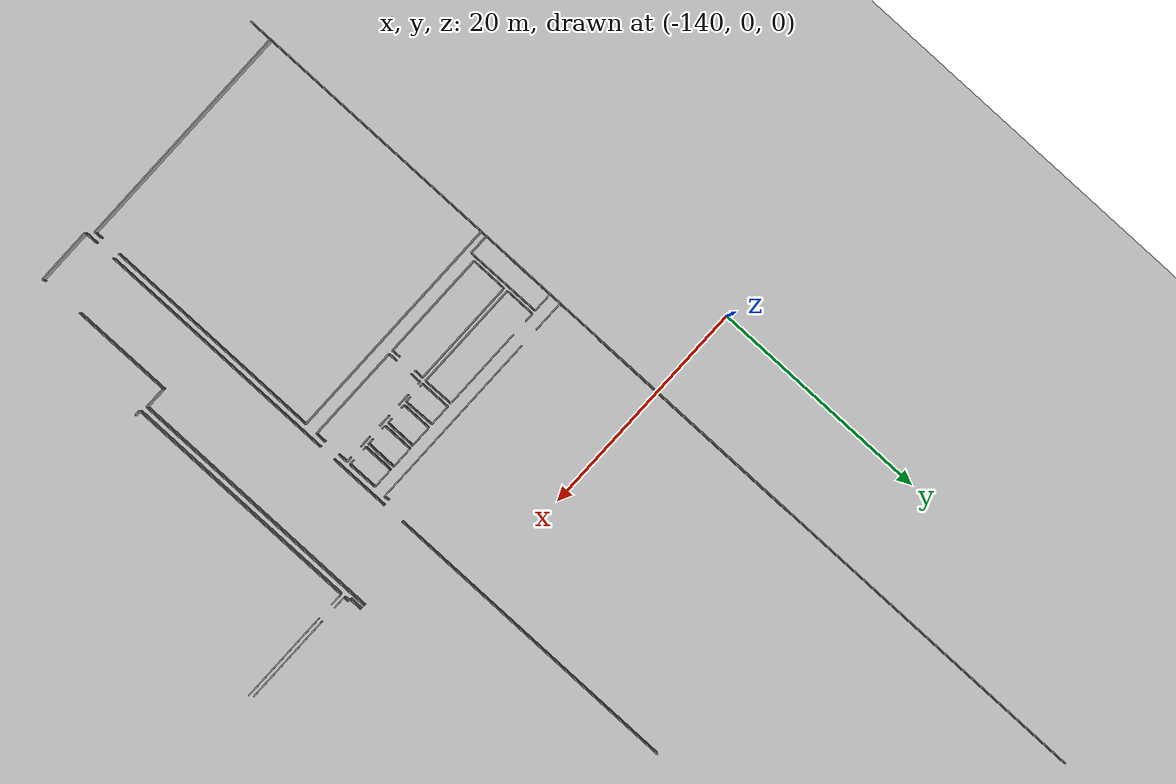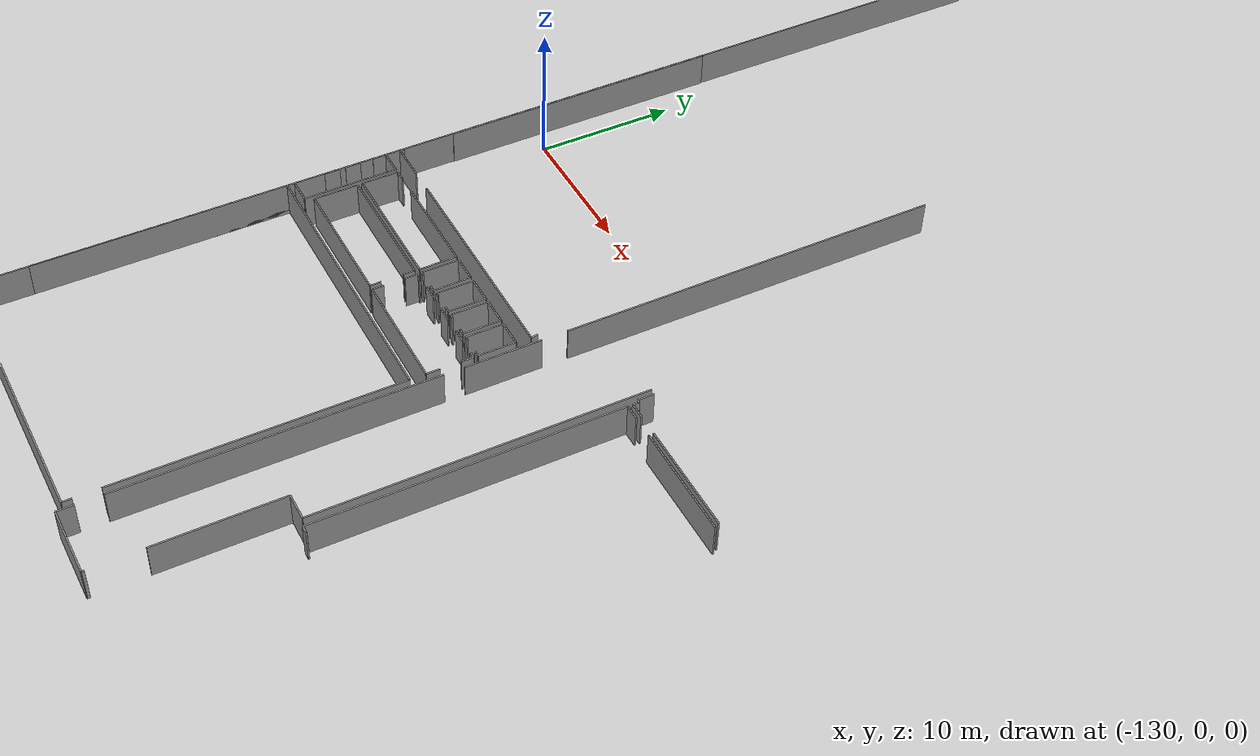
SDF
<sdf version="1.6">
 <world name="default">
  <model name="ground_plane">
   <static>1</static>
   <link name="link">
    <collision name="collision">
     <geometry><plane><normal>0 0 1</normal><size>100 100</size></plane></geometry>
     <surface><friction><ode><mu>100</mu><mu2>50</mu2></ode></friction></surface>
    </collision>
    <visual name="visual">
     <cast_shadows>0</cast_shadows>
     <geometry><plane><normal>0 0 1</normal><size>100 100</size></plane></geometry>
     <material>
      <script><uri>file://media/materials/scripts/gazebo.material</uri><name>Gazebo/Grey</name></script>
     </material>
    </visual>
   </link>
  </model>
  <model name="50015848">
   <static>1</static>
   <link name="Wall_18">
    <collision name="Wall_18_Collision">
     <geometry><box><size>0.189281251388 0.1 2.5</size></box></geometry>
     <pose>0.0946406256938 0 1.25 0 0 0</pose>
    </collision>
    <visual name="Wall_18_Visual">
     <pose>0.0946406256938 0 1.25 0 0 0</pose>
     <geometry><box><size>0.189281251388 0.1 2.5</size></box></geometry>
     <material>
      <script><uri>file://media/materials/scripts/gazebo.material</uri><name>Gazebo/Grey</name></script>
      <ambient>1 1 1 1</ambient>
     </material>
    </visual>
    <pose>26.2809151977 -85.763436495 0 0 0 -1.57079632679</pose>
   </link>
   <link name="Wall_19">
    <collision name="Wall_19_Collision">
     <geometry><box><size>5.0124009667 0.1 2.5</size></box></geometry>
     <pose>2.50620048335 0 1.25 0 0 0</pose>
    </collision>
    <visual name="Wall_19_Visual">
     <pose>2.50620048335 0 1.25 0 0 0</pose>
     <geometry><box><size>5.0124009667 0.1 2.5</size></box></geometry>
     <material>
      <script><uri>file://media/materials/scripts/gazebo.material</uri><name>Gazebo/Grey</name></script>
      <ambient>1 1 1 1</ambient>
     </material>
    </visual>
    <pose>26.2809151977 -85.9527177464 0 0 0 3.14159265359</pose>
   </link>
   <link name="Wall_20">
    <collision name="Wall_20_Collision">
     <geometry><box><size>1.18567196747 0.1 2.5</size></box></geometry>
     <pose>0.592835983736 0 1.25 0 0 0</pose>
    </collision>
    <visual name="Wall_20_Visual">
     <pose>0.592835983736 0 1.25 0 0 0</pose>
     <geometry><box><size>1.18567196747 0.1 2.5</size></box></geometry>
     <material>
      <script><uri>file://media/materials/scripts/gazebo.material</uri><name>Gazebo/Grey</name></script>
      <ambient>1 1 1 1</ambient>
     </material>
    </visual>
    <pose>21.268514231 -85.9527177464 0 0 0 1.57079632679</pose>
   </link>
   <link name="Wall_21">
    <collision name="Wall_21_Collision">
     <geometry><box><size>22.2679496857 0.1 2.5</size></box></geometry>
     <pose>11.1339748428 0 1.25 0 0 0</pose>
    </collision>
    <visual name="Wall_21_Visual">
     <pose>11.1339748428 0 1.25 0 0 0</pose>
     <geometry><box><size>22.2679496857 0.1 2.5</size></box></geometry>
     <material>
      <script><uri>file://media/materials/scripts/gazebo.material</uri><name>Gazebo/Grey</name></script>
      <ambient>1 1 1 1</ambient>
     </material>
    </visual>
    <pose>21.268514231 -82.9343668529 0 0 0 1.57079632679</pose>
   </link>
   <link name="Wall_22">
    <collision name="Wall_22_Collision">
     <geometry><box><size>5.48788764914 0.1 2.5</size></box></geometry>
     <pose>2.74394382457 0 1.25 0 0 0</pose>
    </collision>
    <visual name="Wall_22_Visual">
     <pose>2.74394382457 0 1.25 0 0 0</pose>
     <geometry><box><size>5.48788764914 0.1 2.5</size></box></geometry>
     <material>
      <script><uri>file://media/materials/scripts/gazebo.material</uri><name>Gazebo/Grey</name></script>
      <ambient>1 1 1 1</ambient>
     </material>
    </visual>
    <pose>21.268514231 -59.2473152383 0 0 0 1.57079632679</pose>
   </link>
   <link name="Wall_23">
    <collision name="Wall_23_Collision">
     <geometry><box><size>27.4686169909 0.1 2.5</size></box></geometry>
     <pose>13.7343084955 0 1.25 0 0 0</pose>
    </collision>
    <visual name="Wall_23_Visual">
     <pose>13.7343084955 0 1.25 0 0 0</pose>
     <geometry><box><size>27.4686169909 0.1 2.5</size></box></geometry>
     <material>
      <script><uri>file://media/materials/scripts/gazebo.material</uri><name>Gazebo/Grey</name></script>
      <ambient>1 1 1 1</ambient>
     </material>
    </visual>
    <pose>21.268514231 -51.9077190467 0 0 0 1.57079632679</pose>
   </link>
   <link name="Wall_28">
    <collision name="Wall_28_Collision">
     <geometry><box><size>23.4437262526 0.1 2.5</size></box></geometry>
     <pose>11.7218631263 0 1.25 0 0 0</pose>
    </collision>
    <visual name="Wall_28_Visual">
     <pose>11.7218631263 0 1.25 0 0 0</pose>
     <geometry><box><size>23.4437262526 0.1 2.5</size></box></geometry>
     <material>
      <script><uri>file://media/materials/scripts/gazebo.material</uri><name>Gazebo/Grey</name></script>
      <ambient>1 1 1 1</ambient>
     </material>
    </visual>
    <pose>28.2186376063 -49.5787477244 0 0 0 -1.57079632679</pose>
   </link>
   <link name="Wall_29">
    <collision name="Wall_29_Collision">
     <geometry><box><size>1.95675202507 0.1 2.5</size></box></geometry>
     <pose>0.978376012534 0 1.25 0 0 0</pose>
    </collision>
    <visual name="Wall_29_Visual">
     <pose>0.978376012534 0 1.25 0 0 0</pose>
     <geometry><box><size>1.95675202507 0.1 2.5</size></box></geometry>
     <material>
      <script><uri>file://media/materials/scripts/gazebo.material</uri><name>Gazebo/Grey</name></script>
      <ambient>1 1 1 1</ambient>
     </material>
    </visual>
    <pose>28.2186376063 -73.022473977 0 0 0 3.14159265359</pose>
   </link>
   <link name="Wall_30">
    <collision name="Wall_30_Collision">
     <geometry><box><size>8.99316312833 0.1 2.5</size></box></geometry>
     <pose>4.49658156416 0 1.25 0 0 0</pose>
    </collision>
    <visual name="Wall_30_Visual">
     <pose>4.49658156416 0 1.25 0 0 0</pose>
     <geometry><box><size>8.99316312833 0.1 2.5</size></box></geometry>
     <material>
      <script><uri>file://media/materials/scripts/gazebo.material</uri><name>Gazebo/Grey</name></script>
      <ambient>1 1 1 1</ambient>
     </material>
    </visual>
    <pose>26.2618855813 -73.022473977 0 0 0 -1.56868031596</pose>
   </link>
   <link name="Wall_66">
    <collision name="Wall_66_Collision">
     <geometry><box><size>16.2655012084 0.1 2.5</size></box></geometry>
     <pose>8.13275060419 0 1.25 0 0 0</pose>
    </collision>
    <visual name="Wall_66_Visual">
     <pose>8.13275060419 0 1.25 0 0 0</pose>
     <geometry><box><size>16.2655012084 0.1 2.5</size></box></geometry>
     <material>
      <script><uri>file://media/materials/scripts/gazebo.material</uri><name>Gazebo/Grey</name></script>
      <ambient>1 1 1 1</ambient>
     </material>
    </visual>
    <pose>20.7902365381 -54.2686601247 0 0 0 3.14159265359</pose>
   </link>
   <link name="Wall_67">
    <collision name="Wall_67_Collision">
     <geometry><box><size>2.78390601907 0.1 2.5</size></box></geometry>
     <pose>1.39195300953 0 1.25 0 0 0</pose>
    </collision>
    <visual name="Wall_67_Visual">
     <pose>1.39195300953 0 1.25 0 0 0</pose>
     <geometry><box><size>2.78390601907 0.1 2.5</size></box></geometry>
     <material>
      <script><uri>file://media/materials/scripts/gazebo.material</uri><name>Gazebo/Grey</name></script>
      <ambient>1 1 1 1</ambient>
     </material>
    </visual>
    <pose>2.82754727274 -54.2686601247 0 0 0 3.14159265359</pose>
   </link>
   <link name="Wall_68">
    <collision name="Wall_68_Collision">
     <geometry><box><size>0.323503479248 0.1 2.5</size></box></geometry>
     <pose>0.161751739624 0 1.25 0 0 0</pose>
    </collision>
    <visual name="Wall_68_Visual">
     <pose>0.161751739624 0 1.25 0 0 0</pose>
     <geometry><box><size>0.323503479248 0.1 2.5</size></box></geometry>
     <material>
      <script><uri>file://media/materials/scripts/gazebo.material</uri><name>Gazebo/Grey</name></script>
      <ambient>1 1 1 1</ambient>
     </material>
    </visual>
    <pose>0.0436412536711 -54.2686601247 0 0 0 1.57079632679</pose>
   </link>
   <link name="Wall_69">
    <collision name="Wall_69_Collision">
     <geometry><box><size>20.3515404474 0.1 2.5</size></box></geometry>
     <pose>10.1757702237 0 1.25 0 0 0</pose>
    </collision>
    <visual name="Wall_69_Visual">
     <pose>10.1757702237 0 1.25 0 0 0</pose>
     <geometry><box><size>20.3515404474 0.1 2.5</size></box></geometry>
     <material>
      <script><uri>file://media/materials/scripts/gazebo.material</uri><name>Gazebo/Grey</name></script>
      <ambient>1 1 1 1</ambient>
     </material>
    </visual>
    <pose>0.0436412536711 -50.1559794226 0 0 0 1.57079632679</pose>
   </link>
   <link name="Wall_72">
    <collision name="Wall_72_Collision">
     <geometry><box><size>0.491101438757 0.1 2.5</size></box></geometry>
     <pose>0.245550719379 0 1.25 0 0 0</pose>
    </collision>
    <visual name="Wall_72_Visual">
     <pose>0.245550719379 0 1.25 0 0 0</pose>
     <geometry><box><size>0.491101438757 0.1 2.5</size></box></geometry>
     <material>
      <script><uri>file://media/materials/scripts/gazebo.material</uri><name>Gazebo/Grey</name></script>
      <ambient>1 1 1 1</ambient>
     </material>
    </visual>
    <pose>20.7019391179 -53.7855615957 0 0 0 -1.39001861285</pose>
   </link>
   <link name="Wall_73">
    <collision name="Wall_73_Collision">
     <geometry><box><size>9.69444779225 0.1 2.5</size></box></geometry>
     <pose>4.84722389612 0 1.25 0 0 0</pose>
    </collision>
    <visual name="Wall_73_Visual">
     <pose>4.84722389612 0 1.25 0 0 0</pose>
     <geometry><box><size>9.69444779225 0.1 2.5</size></box></geometry>
     <material>
      <script><uri>file://media/materials/scripts/gazebo.material</uri><name>Gazebo/Grey</name></script>
      <ambient>1 1 1 1</ambient>
     </material>
    </visual>
    <pose>11.7884667838 -58.0471807623 0 0 0 3.14159265359</pose>
   </link>
   <link name="Wall_74">
    <collision name="Wall_74_Collision">
     <geometry><box><size>2.69789215282 0.1 2.5</size></box></geometry>
     <pose>1.34894607641 0 1.25 0 0 0</pose>
    </collision>
    <visual name="Wall_74_Visual">
     <pose>1.34894607641 0 1.25 0 0 0</pose>
     <geometry><box><size>2.69789215282 0.1 2.5</size></box></geometry>
     <material>
      <script><uri>file://media/materials/scripts/gazebo.material</uri><name>Gazebo/Grey</name></script>
      <ambient>1 1 1 1</ambient>
     </material>
    </visual>
    <pose>2.09401899156 -58.0471807623 0 0 0 1.57079632679</pose>
   </link>
   <link name="Wall_75">
    <collision name="Wall_75_Collision">
     <geometry><box><size>0.819795875648 0.1 2.5</size></box></geometry>
     <pose>0.409897937824 0 1.25 0 0 0</pose>
    </collision>
    <visual name="Wall_75_Visual">
     <pose>0.409897937824 0 1.25 0 0 0</pose>
     <geometry><box><size>0.819795875648 0.1 2.5</size></box></geometry>
     <material>
      <script><uri>file://media/materials/scripts/gazebo.material</uri><name>Gazebo/Grey</name></script>
      <ambient>1 1 1 1</ambient>
     </material>
    </visual>
    <pose>2.09401899156 -55.3492886095 0 0 0 0.0</pose>
   </link>
   <link name="Wall_76">
    <collision name="Wall_76_Collision">
     <geometry><box><size>7.37968525014 0.1 2.5</size></box></geometry>
     <pose>3.68984262507 0 1.25 0 0 0</pose>
    </collision>
    <visual name="Wall_76_Visual">
     <pose>3.68984262507 0 1.25 0 0 0</pose>
     <geometry><box><size>7.37968525014 0.1 2.5</size></box></geometry>
     <material>
      <script><uri>file://media/materials/scripts/gazebo.material</uri><name>Gazebo/Grey</name></script>
      <ambient>1 1 1 1</ambient>
     </material>
    </visual>
    <pose>4.36463282355 -55.3492886095 0 0 0 0.0</pose>
   </link>
   <link name="Wall_77">
    <collision name="Wall_77_Collision">
     <geometry><box><size>2.69825335668 0.1 2.5</size></box></geometry>
     <pose>1.34912667834 0 1.25 0 0 0</pose>
    </collision>
    <visual name="Wall_77_Visual">
     <pose>1.34912667834 0 1.25 0 0 0</pose>
     <geometry><box><size>2.69825335668 0.1 2.5</size></box></geometry>
     <material>
      <script><uri>file://media/materials/scripts/gazebo.material</uri><name>Gazebo/Grey</name></script>
      <ambient>1 1 1 1</ambient>
     </material>
    </visual>
    <pose>11.7443180737 -55.3492886095 0 0 0 -1.55443363791</pose>
   </link>
   <link name="Wall_78">
    <collision name="Wall_78_Collision">
     <geometry><box><size>1.79005258517 0.1 2.5</size></box></geometry>
     <pose>0.895026292587 0 1.25 0 0 0</pose>
    </collision>
    <visual name="Wall_78_Visual">
     <pose>0.895026292587 0 1.25 0 0 0</pose>
     <geometry><box><size>1.79005258517 0.1 2.5</size></box></geometry>
     <material>
      <script><uri>file://media/materials/scripts/gazebo.material</uri><name>Gazebo/Grey</name></script>
      <ambient>1 1 1 1</ambient>
     </material>
    </visual>
    <pose>1.81187321201 -62.2179652265 0 0 0 3.14159265359</pose>
   </link>
   <link name="Wall_79">
    <collision name="Wall_79_Collision">
     <geometry><box><size>1.15192611434 0.1 2.5</size></box></geometry>
     <pose>0.575963057171 0 1.25 0 0 0</pose>
    </collision>
    <visual name="Wall_79_Visual">
     <pose>0.575963057171 0 1.25 0 0 0</pose>
     <geometry><box><size>1.15192611434 0.1 2.5</size></box></geometry>
     <material>
      <script><uri>file://media/materials/scripts/gazebo.material</uri><name>Gazebo/Grey</name></script>
      <ambient>1 1 1 1</ambient>
     </material>
    </visual>
    <pose>0.0218206268356 -60.0003805923 0 0 0 1.57079632679</pose>
   </link>
   <link name="Wall_80">
    <collision name="Wall_80_Collision">
     <geometry><box><size>1.12985175929 0.1 2.5</size></box></geometry>
     <pose>0.564925879644 0 1.25 0 0 0</pose>
    </collision>
    <visual name="Wall_80_Visual">
     <pose>0.564925879644 0 1.25 0 0 0</pose>
     <geometry><box><size>1.12985175929 0.1 2.5</size></box></geometry>
     <material>
      <script><uri>file://media/materials/scripts/gazebo.material</uri><name>Gazebo/Grey</name></script>
      <ambient>1 1 1 1</ambient>
     </material>
    </visual>
    <pose>0.0218206268356 -58.4427430558 0 0 0 1.57079632679</pose>
   </link>
   <link name="Wall_81">
    <collision name="Wall_81_Collision">
     <geometry><box><size>1.00146528046 0.1 2.5</size></box></geometry>
     <pose>0.500732640232 0 1.25 0 0 0</pose>
    </collision>
    <visual name="Wall_81_Visual">
     <pose>0.500732640232 0 1.25 0 0 0</pose>
     <geometry><box><size>1.00146528046 0.1 2.5</size></box></geometry>
     <material>
      <script><uri>file://media/materials/scripts/gazebo.material</uri><name>Gazebo/Grey</name></script>
      <ambient>1 1 1 1</ambient>
     </material>
    </visual>
    <pose>0.0218206268356 -56.3583657365 0 0 0 1.57079632679</pose>
   </link>
   <link name="Wall_82">
    <collision name="Wall_82_Collision">
     <geometry><box><size>1.7476799726 0.1 2.5</size></box></geometry>
     <pose>0.873839986299 0 1.25 0 0 0</pose>
    </collision>
    <visual name="Wall_82_Visual">
     <pose>0.873839986299 0 1.25 0 0 0</pose>
     <geometry><box><size>1.7476799726 0.1 2.5</size></box></geometry>
     <material>
      <script><uri>file://media/materials/scripts/gazebo.material</uri><name>Gazebo/Grey</name></script>
      <ambient>1 1 1 1</ambient>
     </material>
    </visual>
    <pose>0.0218206268356 -55.3569004561 0 0 0 0.0</pose>
   </link>
   <link name="Wall_83">
    <collision name="Wall_83_Collision">
     <geometry><box><size>6.86119561176 0.1 2.5</size></box></geometry>
     <pose>3.43059780588 0 1.25 0 0 0</pose>
    </collision>
    <visual name="Wall_83_Visual">
     <pose>3.43059780588 0 1.25 0 0 0</pose>
     <geometry><box><size>6.86119561176 0.1 2.5</size></box></geometry>
     <material>
      <script><uri>file://media/materials/scripts/gazebo.material</uri><name>Gazebo/Grey</name></script>
      <ambient>1 1 1 1</ambient>
     </material>
    </visual>
    <pose>1.76950059943 -55.3569004561 0 0 0 -1.5646205982</pose>
   </link>
   <link name="Wall_84">
    <collision name="Wall_84_Collision">
     <geometry><box><size>9.65029908214 0.1 2.5</size></box></geometry>
     <pose>4.82514954107 0 1.25 0 0 0</pose>
    </collision>
    <visual name="Wall_84_Visual">
     <pose>4.82514954107 0 1.25 0 0 0</pose>
     <geometry><box><size>9.65029908214 0.1 2.5</size></box></geometry>
     <material>
      <script><uri>file://media/materials/scripts/gazebo.material</uri><name>Gazebo/Grey</name></script>
      <ambient>1 1 1 1</ambient>
     </material>
    </visual>
    <pose>11.7694371674 -61.6189129014 0 0 0 3.14159265359</pose>
   </link>
   <link name="Wall_85">
    <collision name="Wall_85_Collision">
     <geometry><box><size>3.22615430482 0.1 2.5</size></box></geometry>
     <pose>1.61307715241 0 1.25 0 0 0</pose>
    </collision>
    <visual name="Wall_85_Visual">
     <pose>1.61307715241 0 1.25 0 0 0</pose>
     <geometry><box><size>3.22615430482 0.1 2.5</size></box></geometry>
     <material>
      <script><uri>file://media/materials/scripts/gazebo.material</uri><name>Gazebo/Grey</name></script>
      <ambient>1 1 1 1</ambient>
     </material>
    </visual>
    <pose>2.11913808524 -61.6189129014 0 0 0 1.57079632679</pose>
   </link>
   <link name="Wall_86">
    <collision name="Wall_86_Collision">
     <geometry><box><size>9.62035915229 0.1 2.5</size></box></geometry>
     <pose>4.81017957615 0 1.25 0 0 0</pose>
    </collision>
    <visual name="Wall_86_Visual">
     <pose>4.81017957615 0 1.25 0 0 0</pose>
     <geometry><box><size>9.62035915229 0.1 2.5</size></box></geometry>
     <material>
      <script><uri>file://media/materials/scripts/gazebo.material</uri><name>Gazebo/Grey</name></script>
      <ambient>1 1 1 1</ambient>
     </material>
    </visual>
    <pose>2.11913808524 -58.3927585966 0 0 0 0.0</pose>
   </link>
   <link name="Wall_87">
    <collision name="Wall_87_Collision">
     <geometry><box><size>0.837556850979 0.1 2.5</size></box></geometry>
     <pose>0.41877842549 0 1.25 0 0 0</pose>
    </collision>
    <visual name="Wall_87_Visual">
     <pose>0.41877842549 0 1.25 0 0 0</pose>
     <geometry><box><size>0.837556850979 0.1 2.5</size></box></geometry>
     <material>
      <script><uri>file://media/materials/scripts/gazebo.material</uri><name>Gazebo/Grey</name></script>
      <ambient>1 1 1 1</ambient>
     </material>
    </visual>
    <pose>11.7394972375 -58.3927585966 0 0 0 -1.57079632679</pose>
   </link>
   <link name="Wall_88">
    <collision name="Wall_88_Collision">
     <geometry><box><size>0.798029623055 0.1 2.5</size></box></geometry>
     <pose>0.399014811527 0 1.25 0 0 0</pose>
    </collision>
    <visual name="Wall_88_Visual">
     <pose>0.399014811527 0 1.25 0 0 0</pose>
     <geometry><box><size>0.798029623055 0.1 2.5</size></box></geometry>
     <material>
      <script><uri>file://media/materials/scripts/gazebo.material</uri><name>Gazebo/Grey</name></script>
      <ambient>1 1 1 1</ambient>
     </material>
    </visual>
    <pose>11.7394972375 -60.8214451091 0 0 0 -1.5332702036</pose>
   </link>
   <link name="Wall_89">
    <collision name="Wall_89_Collision">
     <geometry><box><size>8.570431782 0.1 2.5</size></box></geometry>
     <pose>4.285215891 0 1.25 0 0 0</pose>
    </collision>
    <visual name="Wall_89_Visual">
     <pose>4.285215891 0 1.25 0 0 0</pose>
     <geometry><box><size>8.570431782 0.1 2.5</size></box></geometry>
     <material>
      <script><uri>file://media/materials/scripts/gazebo.material</uri><name>Gazebo/Grey</name></script>
      <ambient>1 1 1 1</ambient>
     </material>
    </visual>
    <pose>20.7100584209 -61.634644051 0 0 0 3.14159265359</pose>
   </link>
   <link name="Wall_90">
    <collision name="Wall_90_Collision">
     <geometry><box><size>0.827915178656 0.1 2.5</size></box></geometry>
     <pose>0.413957589328 0 1.25 0 0 0</pose>
    </collision>
    <visual name="Wall_90_Visual">
     <pose>0.413957589328 0 1.25 0 0 0</pose>
     <geometry><box><size>0.827915178656 0.1 2.5</size></box></geometry>
     <material>
      <script><uri>file://media/materials/scripts/gazebo.material</uri><name>Gazebo/Grey</name></script>
      <ambient>1 1 1 1</ambient>
     </material>
    </visual>
    <pose>12.1396266389 -61.634644051 0 0 0 1.57079632679</pose>
   </link>
   <link name="Wall_91">
    <collision name="Wall_91_Collision">
     <geometry><box><size>0.95883893967 0.1 2.5</size></box></geometry>
     <pose>0.479419469835 0 1.25 0 0 0</pose>
    </collision>
    <visual name="Wall_91_Visual">
     <pose>0.479419469835 0 1.25 0 0 0</pose>
     <geometry><box><size>0.95883893967 0.1 2.5</size></box></geometry>
     <material>
      <script><uri>file://media/materials/scripts/gazebo.material</uri><name>Gazebo/Grey</name></script>
      <ambient>1 1 1 1</ambient>
     </material>
    </visual>
    <pose>12.1396266389 -59.2851207429 0 0 0 1.57079632679</pose>
   </link>
   <link name="Wall_92">
    <collision name="Wall_92_Collision">
     <geometry><box><size>0.228862853554 0.1 2.5</size></box></geometry>
     <pose>0.114431426777 0 1.25 0 0 0</pose>
    </collision>
    <visual name="Wall_92_Visual">
     <pose>0.114431426777 0 1.25 0 0 0</pose>
     <geometry><box><size>0.228862853554 0.1 2.5</size></box></geometry>
     <material>
      <script><uri>file://media/materials/scripts/gazebo.material</uri><name>Gazebo/Grey</name></script>
      <ambient>1 1 1 1</ambient>
     </material>
    </visual>
    <pose>12.1396266389 -58.3262818032 0 0 0 0.0</pose>
   </link>
   <link name="Wall_93">
    <collision name="Wall_93_Collision">
     <geometry><box><size>1.10092674232 0.1 2.5</size></box></geometry>
     <pose>0.55046337116 0 1.25 0 0 0</pose>
    </collision>
    <visual name="Wall_93_Visual">
     <pose>0.55046337116 0 1.25 0 0 0</pose>
     <geometry><box><size>1.10092674232 0.1 2.5</size></box></geometry>
     <material>
      <script><uri>file://media/materials/scripts/gazebo.material</uri><name>Gazebo/Grey</name></script>
      <ambient>1 1 1 1</ambient>
     </material>
    </visual>
    <pose>13.4902219488 -58.3262818032 0 0 0 0.0</pose>
   </link>
   <link name="Wall_94">
    <collision name="Wall_94_Collision">
     <geometry><box><size>1.08443440808 0.1 2.5</size></box></geometry>
     <pose>0.542217204042 0 1.25 0 0 0</pose>
    </collision>
    <visual name="Wall_94_Visual">
     <pose>0.542217204042 0 1.25 0 0 0</pose>
     <geometry><box><size>1.08443440808 0.1 2.5</size></box></geometry>
     <material>
      <script><uri>file://media/materials/scripts/gazebo.material</uri><name>Gazebo/Grey</name></script>
      <ambient>1 1 1 1</ambient>
     </material>
    </visual>
    <pose>15.7590596832 -58.3262818032 0 0 0 0.0</pose>
   </link>
   <link name="Wall_95">
    <collision name="Wall_95_Collision">
     <geometry><box><size>1.04688263167 0.1 2.5</size></box></geometry>
     <pose>0.523441315835 0 1.25 0 0 0</pose>
    </collision>
    <visual name="Wall_95_Visual">
     <pose>0.523441315835 0 1.25 0 0 0</pose>
     <geometry><box><size>1.04688263167 0.1 2.5</size></box></geometry>
     <material>
      <script><uri>file://media/materials/scripts/gazebo.material</uri><name>Gazebo/Grey</name></script>
      <ambient>1 1 1 1</ambient>
     </material>
    </visual>
    <pose>18.0390614593 -58.3262818032 0 0 0 0.0</pose>
   </link>
   <link name="Wall_96">
    <collision name="Wall_96_Collision">
     <geometry><box><size>0.466859922993 0.1 2.5</size></box></geometry>
     <pose>0.233429961497 0 1.25 0 0 0</pose>
    </collision>
    <visual name="Wall_96_Visual">
     <pose>0.233429961497 0 1.25 0 0 0</pose>
     <geometry><box><size>0.466859922993 0.1 2.5</size></box></geometry>
     <material>
      <script><uri>file://media/materials/scripts/gazebo.material</uri><name>Gazebo/Grey</name></script>
      <ambient>1 1 1 1</ambient>
     </material>
    </visual>
    <pose>20.2591833757 -58.3262818032 0 0 0 0.0</pose>
   </link>
   <link name="Wall_97">
    <collision name="Wall_97_Collision">
     <geometry><box><size>0.895660613134 0.1 2.5</size></box></geometry>
     <pose>0.447830306567 0 1.25 0 0 0</pose>
    </collision>
    <visual name="Wall_97_Visual">
     <pose>0.447830306567 0 1.25 0 0 0</pose>
     <geometry><box><size>0.895660613134 0.1 2.5</size></box></geometry>
     <material>
      <script><uri>file://media/materials/scripts/gazebo.material</uri><name>Gazebo/Grey</name></script>
      <ambient>1 1 1 1</ambient>
     </material>
    </visual>
    <pose>20.7260432987 -58.3262818032 0 0 0 -1.57079632679</pose>
   </link>
   <link name="Wall_98">
    <collision name="Wall_98_Collision">
     <geometry><box><size>0.951868777249 0.1 2.5</size></box></geometry>
     <pose>0.475934388624 0 1.25 0 0 0</pose>
    </collision>
    <visual name="Wall_98_Visual">
     <pose>0.475934388624 0 1.25 0 0 0</pose>
     <geometry><box><size>0.951868777249 0.1 2.5</size></box></geometry>
     <material>
      <script><uri>file://media/materials/scripts/gazebo.material</uri><name>Gazebo/Grey</name></script>
      <ambient>1 1 1 1</ambient>
     </material>
    </visual>
    <pose>20.7260432987 -60.6829095015 0 0 0 -1.58759026898</pose>
   </link>
   <link name="Wall_99">
    <collision name="Wall_99_Collision">
     <geometry><box><size>0.508217622693 0.1 2.5</size></box></geometry>
     <pose>0.254108811347 0 1.25 0 0 0</pose>
    </collision>
    <visual name="Wall_99_Visual">
     <pose>0.254108811347 0 1.25 0 0 0</pose>
     <geometry><box><size>0.508217622693 0.1 2.5</size></box></geometry>
     <material>
      <script><uri>file://media/materials/scripts/gazebo.material</uri><name>Gazebo/Grey</name></script>
      <ambient>1 1 1 1</ambient>
     </material>
    </visual>
    <pose>14.0405584558 -58.0697625738 0 0 0 3.14159265359</pose>
   </link>
   <link name="Wall_100">
    <collision name="Wall_100_Collision">
     <geometry><box><size>0.318175186649 0.1 2.5</size></box></geometry>
     <pose>0.159087593324 0 1.25 0 0 0</pose>
    </collision>
    <visual name="Wall_100_Visual">
     <pose>0.159087593324 0 1.25 0 0 0</pose>
     <geometry><box><size>0.318175186649 0.1 2.5</size></box></geometry>
     <material>
      <script><uri>file://media/materials/scripts/gazebo.material</uri><name>Gazebo/Grey</name></script>
      <ambient>1 1 1 1</ambient>
     </material>
    </visual>
    <pose>12.4172053105 -58.0697625738 0 0 0 3.14159265359</pose>
   </link>
   <link name="Wall_101">
    <collision name="Wall_101_Collision">
     <geometry><box><size>2.72047396431 0.1 2.5</size></box></geometry>
     <pose>1.36023698216 0 1.25 0 0 0</pose>
    </collision>
    <visual name="Wall_101_Visual">
     <pose>1.36023698216 0 1.25 0 0 0</pose>
     <geometry><box><size>2.72047396431 0.1 2.5</size></box></geometry>
     <material>
      <script><uri>file://media/materials/scripts/gazebo.material</uri><name>Gazebo/Grey</name></script>
      <ambient>1 1 1 1</ambient>
     </material>
    </visual>
    <pose>12.0990301239 -58.0697625738 0 0 0 1.57079632679</pose>
   </link>
   <link name="Wall_102">
    <collision name="Wall_102_Collision">
     <geometry><box><size>1.8758127232 0.1 2.5</size></box></geometry>
     <pose>0.937906361601 0 1.25 0 0 0</pose>
    </collision>
    <visual name="Wall_102_Visual">
     <pose>0.937906361601 0 1.25 0 0 0</pose>
     <geometry><box><size>1.8758127232 0.1 2.5</size></box></geometry>
     <material>
      <script><uri>file://media/materials/scripts/gazebo.material</uri><name>Gazebo/Grey</name></script>
      <ambient>1 1 1 1</ambient>
     </material>
    </visual>
    <pose>12.0990301239 -55.3492886095 0 0 0 0.0</pose>
   </link>
   <link name="Wall_103">
    <collision name="Wall_103_Collision">
     <geometry><box><size>2.72126755975 0.1 2.5</size></box></geometry>
     <pose>1.36063377987 0 1.25 0 0 0</pose>
    </collision>
    <visual name="Wall_103_Visual">
     <pose>1.36063377987 0 1.25 0 0 0</pose>
     <geometry><box><size>2.72126755975 0.1 2.5</size></box></geometry>
     <material>
      <script><uri>file://media/materials/scripts/gazebo.material</uri><name>Gazebo/Grey</name></script>
      <ambient>1 1 1 1</ambient>
     </material>
    </visual>
    <pose>13.9748428471 -55.3492886095 0 0 0 -1.5466450825</pose>
   </link>
   <link name="Wall_104">
    <collision name="Wall_104_Collision">
     <geometry><box><size>0.455949609576 0.1 2.5</size></box></geometry>
     <pose>0.227974804788 0 1.25 0 0 0</pose>
    </collision>
    <visual name="Wall_104_Visual">
     <pose>0.227974804788 0 1.25 0 0 0</pose>
     <geometry><box><size>0.455949609576 0.1 2.5</size></box></geometry>
     <material>
      <script><uri>file://media/materials/scripts/gazebo.material</uri><name>Gazebo/Grey</name></script>
      <ambient>1 1 1 1</ambient>
     </material>
    </visual>
    <pose>16.2431731251 -58.0111513552 0 0 0 3.14159265359</pose>
   </link>
   <link name="Wall_105">
    <collision name="Wall_105_Collision">
     <geometry><box><size>0.302951493508 0.1 2.5</size></box></geometry>
     <pose>0.151475746754 0 1.25 0 0 0</pose>
    </collision>
    <visual name="Wall_105_Visual">
     <pose>0.151475746754 0 1.25 0 0 0</pose>
     <geometry><box><size>0.302951493508 0.1 2.5</size></box></geometry>
     <material>
      <script><uri>file://media/materials/scripts/gazebo.material</uri><name>Gazebo/Grey</name></script>
      <ambient>1 1 1 1</ambient>
     </material>
    </visual>
    <pose>14.6457002582 -58.0111513552 0 0 0 3.14159265359</pose>
   </link>
   <link name="Wall_106">
    <collision name="Wall_106_Collision">
     <geometry><box><size>2.67454915667 0.1 2.5</size></box></geometry>
     <pose>1.33727457834 0 1.25 0 0 0</pose>
    </collision>
    <visual name="Wall_106_Visual">
     <pose>1.33727457834 0 1.25 0 0 0</pose>
     <geometry><box><size>2.67454915667 0.1 2.5</size></box></geometry>
     <material>
      <script><uri>file://media/materials/scripts/gazebo.material</uri><name>Gazebo/Grey</name></script>
      <ambient>1 1 1 1</ambient>
     </material>
    </visual>
    <pose>14.3427487647 -58.0111513552 0 0 0 1.57079632679</pose>
   </link>
   <link name="Wall_107">
    <collision name="Wall_107_Collision">
     <geometry><box><size>1.90803620702 0.1 2.5</size></box></geometry>
     <pose>0.954018103508 0 1.25 0 0 0</pose>
    </collision>
    <visual name="Wall_107_Visual">
     <pose>0.954018103508 0 1.25 0 0 0</pose>
     <geometry><box><size>1.90803620702 0.1 2.5</size></box></geometry>
     <material>
      <script><uri>file://media/materials/scripts/gazebo.material</uri><name>Gazebo/Grey</name></script>
      <ambient>1 1 1 1</ambient>
     </material>
    </visual>
    <pose>14.3427487647 -55.3366021986 0 0 0 0.0</pose>
   </link>
   <link name="Wall_108">
    <collision name="Wall_108_Collision">
     <geometry><box><size>2.67455998842 0.1 2.5</size></box></geometry>
     <pose>1.33727999421 0 1.25 0 0 0</pose>
    </collision>
    <visual name="Wall_108_Visual">
     <pose>1.33727999421 0 1.25 0 0 0</pose>
     <geometry><box><size>2.67455998842 0.1 2.5</size></box></geometry>
     <material>
      <script><uri>file://media/materials/scripts/gazebo.material</uri><name>Gazebo/Grey</name></script>
      <ambient>1 1 1 1</ambient>
     </material>
    </visual>
    <pose>16.2507849717 -55.3366021986 0 0 0 -1.5736423489</pose>
   </link>
   <link name="Wall_109">
    <collision name="Wall_109_Collision">
     <geometry><box><size>0.467367379432 0.1 2.5</size></box></geometry>
     <pose>0.233683689716 0 1.25 0 0 0</pose>
    </collision>
    <visual name="Wall_109_Visual">
     <pose>0.233683689716 0 1.25 0 0 0</pose>
     <geometry><box><size>0.467367379432 0.1 2.5</size></box></geometry>
     <material>
      <script><uri>file://media/materials/scripts/gazebo.material</uri><name>Gazebo/Grey</name></script>
      <ambient>1 1 1 1</ambient>
     </material>
    </visual>
    <pose>18.5018617308 -58.0309421563 0 0 0 3.14159265359</pose>
   </link>
   <link name="Wall_110">
    <collision name="Wall_110_Collision">
     <geometry><box><size>0.319190099525 0.1 2.5</size></box></geometry>
     <pose>0.159595049762 0 1.25 0 0 0</pose>
    </collision>
    <visual name="Wall_110_Visual">
     <pose>0.159595049762 0 1.25 0 0 0</pose>
     <geometry><box><size>0.319190099525 0.1 2.5</size></box></geometry>
     <material>
      <script><uri>file://media/materials/scripts/gazebo.material</uri><name>Gazebo/Grey</name></script>
      <ambient>1 1 1 1</ambient>
     </material>
    </visual>
    <pose>16.8993142995 -58.0309421563 0 0 0 3.14159265359</pose>
   </link>
   <link name="Wall_111">
    <collision name="Wall_111_Collision">
     <geometry><box><size>2.71463821528 0.1 2.5</size></box></geometry>
     <pose>1.35731910764 0 1.25 0 0 0</pose>
    </collision>
    <visual name="Wall_111_Visual">
     <pose>1.35731910764 0 1.25 0 0 0</pose>
     <geometry><box><size>2.71463821528 0.1 2.5</size></box></geometry>
     <material>
      <script><uri>file://media/materials/scripts/gazebo.material</uri><name>Gazebo/Grey</name></script>
      <ambient>1 1 1 1</ambient>
     </material>
    </visual>
    <pose>16.5801242 -58.0309421563 0 0 0 1.57079632679</pose>
   </link>
   <link name="Wall_112">
    <collision name="Wall_112_Collision">
     <geometry><box><size>1.93594631111 0.1 2.5</size></box></geometry>
     <pose>0.967973155554 0 1.25 0 0 0</pose>
    </collision>
    <visual name="Wall_112_Visual">
     <pose>0.967973155554 0 1.25 0 0 0</pose>
     <geometry><box><size>1.93594631111 0.1 2.5</size></box></geometry>
     <material>
      <script><uri>file://media/materials/scripts/gazebo.material</uri><name>Gazebo/Grey</name></script>
      <ambient>1 1 1 1</ambient>
     </material>
    </visual>
    <pose>16.5801242 -55.316303941 0 0 0 0.0</pose>
   </link>
   <link name="Wall_113">
    <collision name="Wall_113_Collision">
     <geometry><box><size>2.71467540035 0.1 2.5</size></box></geometry>
     <pose>1.35733770018 0 1.25 0 0 0</pose>
    </collision>
    <visual name="Wall_113_Visual">
     <pose>1.35733770018 0 1.25 0 0 0</pose>
     <geometry><box><size>2.71467540035 0.1 2.5</size></box></geometry>
     <material>
      <script><uri>file://media/materials/scripts/gazebo.material</uri><name>Gazebo/Grey</name></script>
      <ambient>1 1 1 1</ambient>
     </material>
    </visual>
    <pose>18.5160705111 -55.316303941 0 0 0 -1.57603041303</pose>
   </link>
   <link name="Wall_114">
    <collision name="Wall_114_Collision">
     <geometry><box><size>0.456203337795 0.1 2.5</size></box></geometry>
     <pose>0.228101668897 0 1.25 0 0 0</pose>
    </collision>
    <visual name="Wall_114_Visual">
     <pose>0.228101668897 0 1.25 0 0 0</pose>
     <geometry><box><size>0.456203337795 0.1 2.5</size></box></geometry>
     <material>
      <script><uri>file://media/materials/scripts/gazebo.material</uri><name>Gazebo/Grey</name></script>
      <ambient>1 1 1 1</ambient>
     </material>
    </visual>
    <pose>20.7222373754 -58.0195243865 0 0 0 3.14159265359</pose>
   </link>
   <link name="Wall_115">
    <collision name="Wall_115_Collision">
     <geometry><box><size>0.27656375873 0.1 2.5</size></box></geometry>
     <pose>0.138281879365 0 1.25 0 0 0</pose>
    </collision>
    <visual name="Wall_115_Visual">
     <pose>0.138281879365 0 1.25 0 0 0</pose>
     <geometry><box><size>0.27656375873 0.1 2.5</size></box></geometry>
     <material>
      <script><uri>file://media/materials/scripts/gazebo.material</uri><name>Gazebo/Grey</name></script>
      <ambient>1 1 1 1</ambient>
     </material>
    </visual>
    <pose>19.1313614422 -58.0195243865 0 0 0 3.14159265359</pose>
   </link>
   <link name="Wall_116">
    <collision name="Wall_116_Collision">
     <geometry><box><size>2.68799675228 0.1 2.5</size></box></geometry>
     <pose>1.34399837614 0 1.25 0 0 0</pose>
    </collision>
    <visual name="Wall_116_Visual">
     <pose>1.34399837614 0 1.25 0 0 0</pose>
     <geometry><box><size>2.68799675228 0.1 2.5</size></box></geometry>
     <material>
      <script><uri>file://media/materials/scripts/gazebo.material</uri><name>Gazebo/Grey</name></script>
      <ambient>1 1 1 1</ambient>
     </material>
    </visual>
    <pose>18.8547976835 -58.0195243865 0 0 0 1.57079632679</pose>
   </link>
   <link name="Wall_117">
    <collision name="Wall_117_Collision">
     <geometry><box><size>1.8410519572 0.1 2.5</size></box></geometry>
     <pose>0.920525978598 0 1.25 0 0 0</pose>
    </collision>
    <visual name="Wall_117_Visual">
     <pose>0.920525978598 0 1.25 0 0 0</pose>
     <geometry><box><size>1.8410519572 0.1 2.5</size></box></geometry>
     <material>
      <script><uri>file://media/materials/scripts/gazebo.material</uri><name>Gazebo/Grey</name></script>
      <ambient>1 1 1 1</ambient>
     </material>
    </visual>
    <pose>18.8547976835 -55.3315276342 0 0 0 0.0</pose>
   </link>
   <link name="Wall_118">
    <collision name="Wall_118_Collision">
     <geometry><box><size>2.68812627174 0.1 2.5</size></box></geometry>
     <pose>1.34406313587 0 1.25 0 0 0</pose>
    </collision>
    <visual name="Wall_118_Visual">
     <pose>1.34406313587 0 1.25 0 0 0</pose>
     <geometry><box><size>2.68812627174 0.1 2.5</size></box></geometry>
     <material>
      <script><uri>file://media/materials/scripts/gazebo.material</uri><name>Gazebo/Grey</name></script>
      <ambient>1 1 1 1</ambient>
     </material>
    </visual>
    <pose>20.6958496407 -55.3315276342 0 0 0 -1.56097976465</pose>
   </link>
   <link name="Wall_119">
    <collision name="Wall_119_Collision">
     <geometry><box><size>20.7364461557 0.1 2.5</size></box></geometry>
     <pose>10.3682230779 0 1.25 0 0 0</pose>
    </collision>
    <visual name="Wall_119_Visual">
     <pose>10.3682230779 0 1.25 0 0 0</pose>
     <geometry><box><size>20.7364461557 0.1 2.5</size></box></geometry>
     <material>
      <script><uri>file://media/materials/scripts/gazebo.material</uri><name>Gazebo/Grey</name></script>
      <ambient>1 1 1 1</ambient>
     </material>
    </visual>
    <pose>20.7364461557 -85.4115154552 0 0 0 3.14159265359</pose>
   </link>
   <link name="Wall_120">
    <collision name="Wall_120_Collision">
     <geometry><box><size>0.354458321968 0.1 2.5</size></box></geometry>
     <pose>0.177229160984 0 1.25 0 0 0</pose>
    </collision>
    <visual name="Wall_120_Visual">
     <pose>0.177229160984 0 1.25 0 0 0</pose>
     <geometry><box><size>0.354458321968 0.1 2.5</size></box></geometry>
     <material>
      <script><uri>file://media/materials/scripts/gazebo.material</uri><name>Gazebo/Grey</name></script>
      <ambient>1 1 1 1</ambient>
     </material>
    </visual>
    <pose>0.0 -85.4115154552 0 0 0 1.57079632679</pose>
   </link>
   <link name="Wall_121">
    <collision name="Wall_121_Collision">
     <geometry><box><size>18.4031614536 0.1 2.5</size></box></geometry>
     <pose>9.2015807268 0 1.25 0 0 0</pose>
    </collision>
    <visual name="Wall_121_Visual">
     <pose>9.2015807268 0 1.25 0 0 0</pose>
     <geometry><box><size>18.4031614536 0.1 2.5</size></box></geometry>
     <material>
      <script><uri>file://media/materials/scripts/gazebo.material</uri><name>Gazebo/Grey</name></script>
      <ambient>1 1 1 1</ambient>
     </material>
    </visual>
    <pose>0.0 -81.1714631872 0 0 0 1.57079632679</pose>
   </link>
   <link name="Wall_122">
    <collision name="Wall_122_Collision">
     <geometry><box><size>20.7138643442 0.1 2.5</size></box></geometry>
     <pose>10.3569321721 0 1.25 0 0 0</pose>
    </collision>
    <visual name="Wall_122_Visual">
     <pose>10.3569321721 0 1.25 0 0 0</pose>
     <geometry><box><size>20.7138643442 0.1 2.5</size></box></geometry>
     <material>
      <script><uri>file://media/materials/scripts/gazebo.material</uri><name>Gazebo/Grey</name></script>
      <ambient>1 1 1 1</ambient>
     </material>
    </visual>
    <pose>0.0 -62.7683017336 0 0 0 0.0</pose>
   </link>
   <link name="Wall_123">
    <collision name="Wall_123_Collision">
     <geometry><box><size>20.1163343884 0.1 2.5</size></box></geometry>
     <pose>10.0581671942 0 1.25 0 0 0</pose>
    </collision>
    <visual name="Wall_123_Visual">
     <pose>10.0581671942 0 1.25 0 0 0</pose>
     <geometry><box><size>20.1163343884 0.1 2.5</size></box></geometry>
     <material>
      <script><uri>file://media/materials/scripts/gazebo.material</uri><name>Gazebo/Grey</name></script>
      <ambient>1 1 1 1</ambient>
     </material>
    </visual>
    <pose>20.7138643442 -62.7683017336 0 0 0 -1.57079632679</pose>
   </link>
   <link name="Wall_124">
    <collision name="Wall_124_Collision">
     <geometry><box><size>0.667940777495 0.1 2.5</size></box></geometry>
     <pose>0.333970388748 0 1.25 0 0 0</pose>
    </collision>
    <visual name="Wall_124_Visual">
     <pose>0.333970388748 0 1.25 0 0 0</pose>
     <geometry><box><size>0.667940777495 0.1 2.5</size></box></geometry>
     <material>
      <script><uri>file://media/materials/scripts/gazebo.material</uri><name>Gazebo/Grey</name></script>
      <ambient>1 1 1 1</ambient>
     </material>
    </visual>
    <pose>20.7138643442 -84.743956511 0 0 0 -1.53698177877</pose>
   </link>
   <link name="Wall_143">
    <collision name="Wall_143_Collision">
     <geometry><box><size>7.95514085088 0.1 2.5</size></box></geometry>
     <pose>3.97757042544 0 1.25 0 0 0</pose>
    </collision>
    <visual name="Wall_143_Visual">
     <pose>3.97757042544 0 1.25 0 0 0</pose>
     <geometry><box><size>7.95514085088 0.1 2.5</size></box></geometry>
     <material>
      <script><uri>file://media/materials/scripts/gazebo.material</uri><name>Gazebo/Grey</name></script>
      <ambient>1 1 1 1</ambient>
     </material>
    </visual>
    <pose>39.4676781965 -51.2358467228 0 0 0 3.14159265359</pose>
   </link>
   <link name="Wall_144">
    <collision name="Wall_144_Collision">
     <geometry><box><size>1.12985175929 0.1 2.5</size></box></geometry>
     <pose>0.564925879644 0 1.25 0 0 0</pose>
    </collision>
    <visual name="Wall_144_Visual">
     <pose>0.564925879644 0 1.25 0 0 0</pose>
     <geometry><box><size>1.12985175929 0.1 2.5</size></box></geometry>
     <material>
      <script><uri>file://media/materials/scripts/gazebo.material</uri><name>Gazebo/Grey</name></script>
      <ambient>1 1 1 1</ambient>
     </material>
    </visual>
    <pose>29.957183363 -51.2358467228 0 0 0 3.14159265359</pose>
   </link>
   <link name="Wall_145">
    <collision name="Wall_145_Collision">
     <geometry><box><size>0.460770445737 0.1 2.5</size></box></geometry>
     <pose>0.230385222869 0 1.25 0 0 0</pose>
    </collision>
    <visual name="Wall_145_Visual">
     <pose>0.230385222869 0 1.25 0 0 0</pose>
     <geometry><box><size>0.460770445737 0.1 2.5</size></box></geometry>
     <material>
      <script><uri>file://media/materials/scripts/gazebo.material</uri><name>Gazebo/Grey</name></script>
      <ambient>1 1 1 1</ambient>
     </material>
    </visual>
    <pose>28.8273316038 -51.2358467228 0 0 0 1.57079632679</pose>
   </link>
   <link name="Wall_146">
    <collision name="Wall_146_Collision">
     <geometry><box><size>0.214654073289 0.1 2.5</size></box></geometry>
     <pose>0.107327036645 0 1.25 0 0 0</pose>
    </collision>
    <visual name="Wall_146_Visual">
     <pose>0.107327036645 0 1.25 0 0 0</pose>
     <geometry><box><size>0.214654073289 0.1 2.5</size></box></geometry>
     <material>
      <script><uri>file://media/materials/scripts/gazebo.material</uri><name>Gazebo/Grey</name></script>
      <ambient>1 1 1 1</ambient>
     </material>
    </visual>
    <pose>28.8273316038 -50.775076277 0 0 0 3.14159265359</pose>
   </link>
   <link name="Wall_147">
    <collision name="Wall_147_Collision">
     <geometry><box><size>1.17603029515 0.1 2.5</size></box></geometry>
     <pose>0.588015147575 0 1.25 0 0 0</pose>
    </collision>
    <visual name="Wall_147_Visual">
     <pose>0.588015147575 0 1.25 0 0 0</pose>
     <geometry><box><size>1.17603029515 0.1 2.5</size></box></geometry>
     <material>
      <script><uri>file://media/materials/scripts/gazebo.material</uri><name>Gazebo/Grey</name></script>
      <ambient>1 1 1 1</ambient>
     </material>
    </visual>
    <pose>28.6126775305 -50.775076277 0 0 0 1.57079632679</pose>
   </link>
   <link name="Wall_417">
    <collision name="Wall_417_Collision">
     <geometry><box><size>0.52978452131 0.1 2.5</size></box></geometry>
     <pose>0.264892260655 0 1.25 0 0 0</pose>
    </collision>
    <visual name="Wall_417_Visual">
     <pose>0.264892260655 0 1.25 0 0 0</pose>
     <geometry><box><size>0.52978452131 0.1 2.5</size></box></geometry>
     <material>
      <script><uri>file://media/materials/scripts/gazebo.material</uri><name>Gazebo/Grey</name></script>
      <ambient>1 1 1 1</ambient>
     </material>
    </visual>
    <pose>29.3418924319 -73.2477846355 0 0 0 3.14159265359</pose>
   </link>
   <link name="Wall_418">
    <collision name="Wall_418_Collision">
     <geometry><box><size>21.6704197299 0.1 2.5</size></box></geometry>
     <pose>10.835209865 0 1.25 0 0 0</pose>
    </collision>
    <visual name="Wall_418_Visual">
     <pose>10.835209865 0 1.25 0 0 0</pose>
     <geometry><box><size>21.6704197299 0.1 2.5</size></box></geometry>
     <material>
      <script><uri>file://media/materials/scripts/gazebo.material</uri><name>Gazebo/Grey</name></script>
      <ambient>1 1 1 1</ambient>
     </material>
    </visual>
    <pose>28.8121079106 -73.2477846355 0 0 0 1.57079632679</pose>
   </link>
   <link name="Wall_419">
    <collision name="Wall_419_Collision">
     <geometry><box><size>1.12274736916 0.1 2.5</size></box></geometry>
     <pose>0.561373684578 0 1.25 0 0 0</pose>
    </collision>
    <visual name="Wall_419_Visual">
     <pose>0.561373684578 0 1.25 0 0 0</pose>
     <geometry><box><size>1.12274736916 0.1 2.5</size></box></geometry>
     <material>
      <script><uri>file://media/materials/scripts/gazebo.material</uri><name>Gazebo/Grey</name></script>
      <ambient>1 1 1 1</ambient>
     </material>
    </visual>
    <pose>28.8121079106 -51.5773649056 0 0 0 0.0</pose>
   </link>
   <link name="Wall_420">
    <collision name="Wall_420_Collision">
     <geometry><box><size>8.1675113702 0.1 2.5</size></box></geometry>
     <pose>4.0837556851 0 1.25 0 0 0</pose>
    </collision>
    <visual name="Wall_420_Visual">
     <pose>4.0837556851 0 1.25 0 0 0</pose>
     <geometry><box><size>8.1675113702 0.1 2.5</size></box></geometry>
     <material>
      <script><uri>file://media/materials/scripts/gazebo.material</uri><name>Gazebo/Grey</name></script>
      <ambient>1 1 1 1</ambient>
     </material>
    </visual>
    <pose>31.5077165095 -51.5773649056 0 0 0 0.0</pose>
   </link>
   <link name="Wall_1669">
    <collision name="Wall_1669_Collision">
     <geometry><box><size>87.5217730528 0.1 2.5</size></box></geometry>
     <pose>43.7608865264 0 1.25 0 0 0</pose>
    </collision>
    <visual name="Wall_1669_Visual">
     <pose>43.7608865264 0 1.25 0 0 0</pose>
     <geometry><box><size>87.5217730528 0.1 2.5</size></box></geometry>
     <material>
      <script><uri>file://media/materials/scripts/gazebo.material</uri><name>Gazebo/Grey</name></script>
      <ambient>1 1 1 1</ambient>
     </material>
    </visual>
    <pose>0.0 -87.5217730528 0 0 0 1.57079632679</pose>
   </link>
   <pose>-131.8 43.7717730528 0 0 0 0</pose>
  </model>
 </world>
</sdf>
